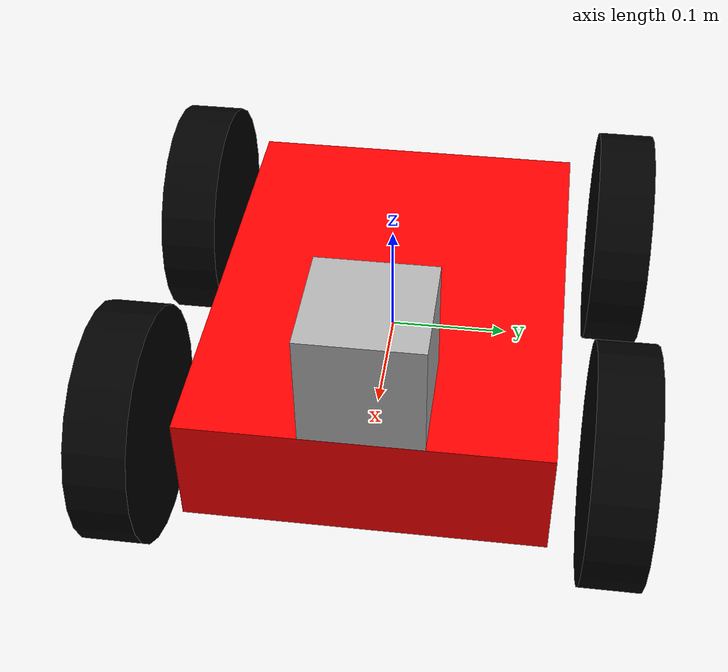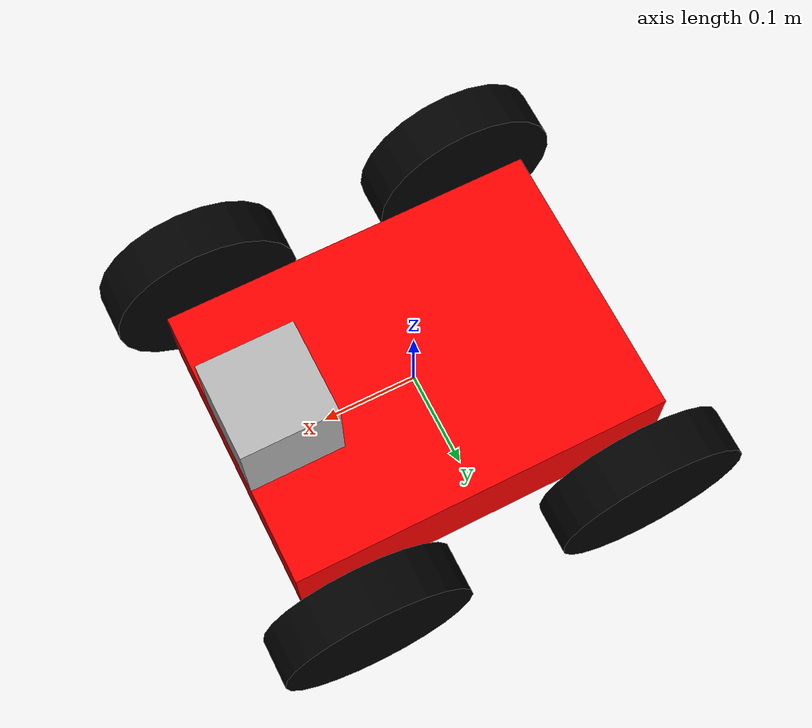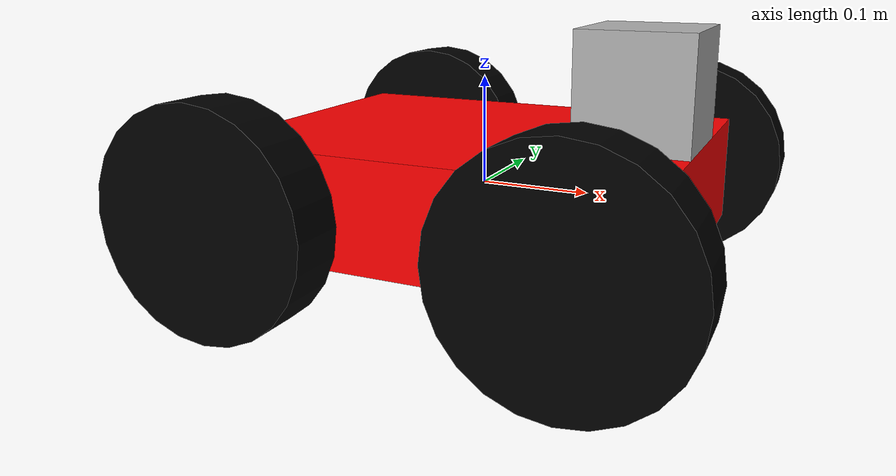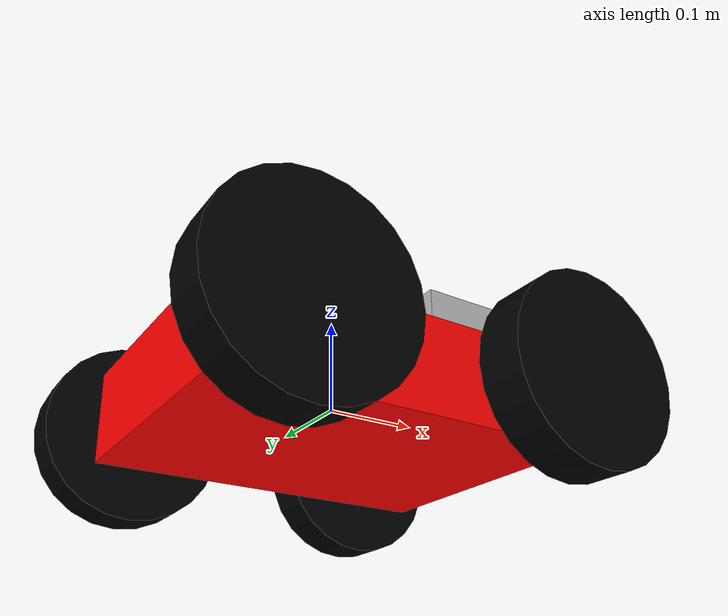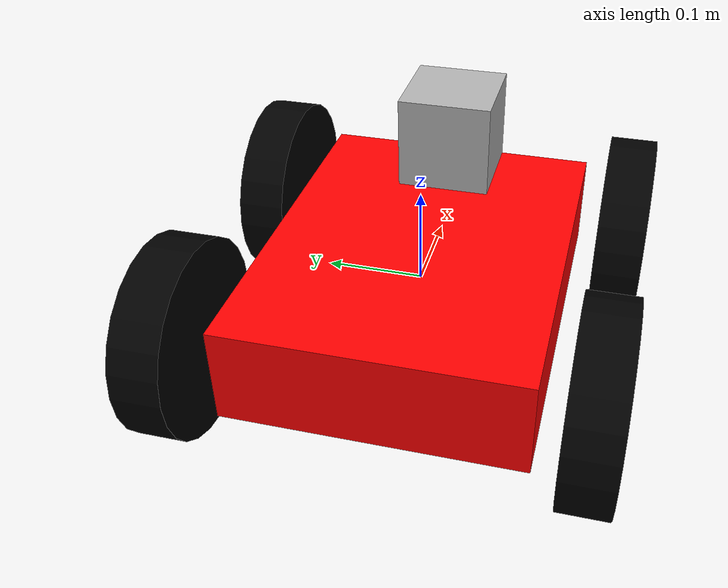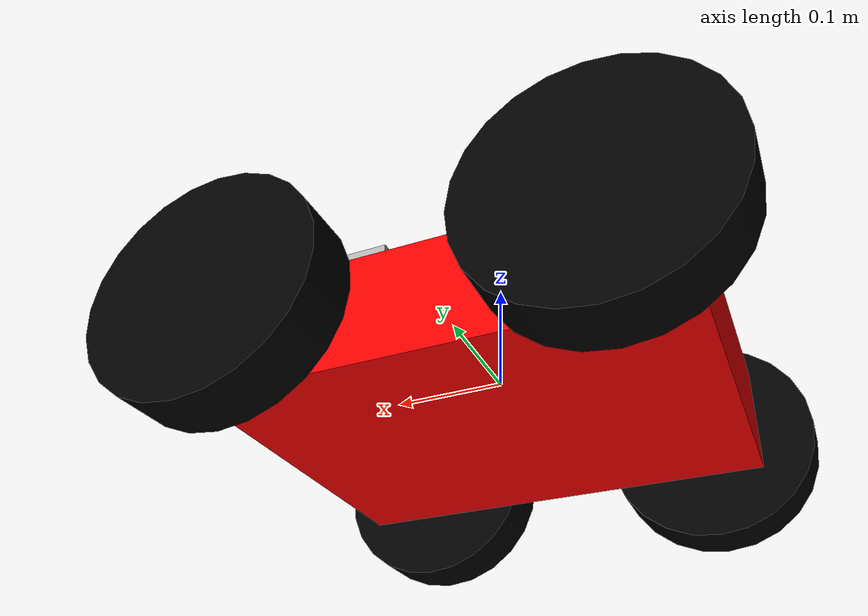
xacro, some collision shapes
<robot name="sardor" xmlns:xacro="http://www.ros.org/wiki/xacro">

  <!-- import URDF files -->
  <xacro:include filename="$(find sardor)/urdf/sardor.gazebo" />
  <xacro:include filename="$(find sardor)/urdf/properties.xacro"/>
  <!-- robot_footprint -->
  <link name="robot_footprint"></link>

  <joint name="robot_footprint_joint" type="fixed">
    <origin xyz="0 0 0" rpy="0 0 0" />
    <parent link="robot_footprint"/>
    <child link="chassis" />
  </joint>

  <!-- chassis -->
  <link name='chassis'>
    <pose>0 0 0.1 0 0 0</pose>

    <visual name='chassis_visual'>
      <origin xyz="0 0 0" rpy=" 0 0 0"/>
      <geometry>
        <box size=".4 .3 .1"/>
      </geometry>
      <material name="red"/>
    </visual>

    <inertial>
      <mass value="15.0"/>
      <origin xyz="0.0 0 0" rpy=" 0 0 0"/>
      <inertia
          ixx="0.1" ixy="0" ixz="0"
          iyy="0.1" iyz="0"
          izz="0.1"
      />
    </inertial>

    <collision name='collision'>
      <origin xyz="0 0 0" rpy=" 0 0 0"/>
      <geometry>
        <box size=".4 .3 .1"/>
      </geometry>
    </collision>

  </link>
<!-- left_down_wheel -->

  <link name="left_down_wheel">

    <visual name='left_down_wheel_visual'>
      <origin xyz="0 0 0" rpy=" 0 1.5707 1.5707"/>
      <geometry>
        <cylinder radius="0.1" length="0.05"/>
      </geometry>
      <material name="black"/>
    </visual>

   <collision name='left_down_wheel_collision'>
      <origin xyz="0 0 0" rpy=" 0 1.5707 1.5707"/>
      <geometry>
        <cylinder radius="0.1" length="0.05"/>
      </geometry>
   </collision>

    <inertial>
      <mass value="5.0"/>
      <origin xyz="0.0 0 0" rpy=" 0 1.5707 1.5707"/>
      <inertia
          ixx="0.1" ixy="0" ixz="0"
          iyy="0.1" iyz="0"
          izz="0.1"
      />
    </inertial>

  </link>

  <joint type="continuous" name="left_down_wheel_hinge">
      <origin xyz="-0.15 0.2 0" rpy="0 0 0"/>
      <child link="left_down_wheel"/>
      <parent link="chassis"/>
      <axis xyz="0 1 0" rpy="0 0 0"/>
      <limit effort="10000" velocity="1000"/>
      <joint_properties damping="1.0" friction="1.0"/>
  </joint>

  <!-- right_down_wheel -->

  <link name="right_down_wheel">

    <visual name='right_down_wheel_visual'>
      <origin xyz="0 0 0" rpy=" 0 1.5707 1.5707"/>
      <geometry>
        <cylinder radius="0.1" length="0.05"/>
      </geometry>
      <material name="black"/>
    </visual>

    <collision name='right_down_wheel_collision'>
      <origin xyz="0 0 0" rpy=" 0 1.5707 1.5707"/>
      <geometry>
        <cylinder radius="0.1" length="0.05"/>
      </geometry>
    </collision>

    <inertial>
      <mass value="5.0"/>
      <origin xyz="0.0 0 0" rpy=" 0 1.5707 1.5707"/>
      <inertia
          ixx="0.1" ixy="0" ixz="0"
          iyy="0.1" iyz="0"
          izz="0.1"
      />
    </inertial>

  </link>

  <joint type="continuous" name="right_down_wheel_hinge">
      <origin xyz="-0.15 -0.2 0" rpy="0 0 0"/>
      <child link="right_down_wheel"/>
      <parent link="chassis"/>
      <axis xyz="0 1 0" rpy="0 0 0"/>
      <limit effort="10000" velocity="1000"/>
      <joint_properties damping="1.0" friction="1.0"/>
  </joint>
  <!-- right_up_wheel -->

  <link name="right_up_wheel">

    <visual name='right_up_wheel_visual'>
      <origin xyz="0 0 0" rpy=" 0 1.5707 1.5707"/>
      <geometry>
        <cylinder radius="0.1" length="0.05"/>
      </geometry>
      <material name="black"/>
    </visual>

    <collision name='right_up_wheel_collision'>
      <origin xyz="0 0 0" rpy=" 0 1.5707 1.5707"/>
      <geometry>
        <cylinder radius="0.1" length="0.05"/>
      </geometry>
    </collision>

    <inertial>
      <mass value="5.0"/>
      <origin xyz="0.0 0 0" rpy=" 0 1.5707 1.5707"/>
      <inertia
          ixx="0.1" ixy="0" ixz="0"
          iyy="0.1" iyz="0"
          izz="0.1"
      />
    </inertial>

  </link>

  <joint type="continuous" name="right_up_wheel_hinge">
      <origin xyz="0.15 -0.2 0" rpy="0 0 0"/>
      <child link="right_up_wheel"/>
      <parent link="chassis"/>
      <axis xyz="0 1 0" rpy="0 0 0"/>
      <limit effort="10000" velocity="1000"/>
      <joint_properties damping="1.0" friction="1.0"/>
  </joint>
<!-- left_up_wheel -->

  <link name="left_up_wheel">

    <visual name='left_up_wheel_visual'>
      <origin xyz="0 0 0" rpy=" 0 1.5707 1.5707"/>
      <geometry>
        <cylinder radius="0.1" length="0.05"/>
      </geometry>
      <material name="black"/>
    </visual>

   <collision name='left_up_wheel_collision'>
      <origin xyz="0 0 0" rpy=" 0 1.5707 1.5707"/>
      <geometry>
        <cylinder radius="0.1" length="0.05"/>
      </geometry>
   </collision>

    <inertial>
      <mass value="5.0"/>
      <origin xyz="0.0 0 0" rpy=" 0 1.5707 1.5707"/>
      <inertia
          ixx="0.1" ixy="0" ixz="0"
          iyy="0.1" iyz="0"
          izz="0.1"
      />
    </inertial>

  </link>

  <joint type="continuous" name="left_up_wheel_hinge">
      <origin xyz="0.15 0.2 0" rpy="0 0 0"/>
      <child link="left_up_wheel"/>
      <parent link="chassis"/>
      <axis xyz="0 1 0" rpy="0 0 0"/>
      <limit effort="10000" velocity="1000"/>
      <joint_properties damping="1.0" friction="1.0"/>
  </joint>
<!-- camera -->

  <link name="camera">

   <collision name='camera_collision'>
      <origin xyz="0 0 0" rpy=" 0 0 0"/>
      <geometry>
        <box size="0.05 0.05 0.05"/>
      </geometry>
    </collision>

    <inertial>
      <mass value="0.1"/>
      <origin xyz="0 0 0" rpy=" 0 0 0"/>
      <inertia
          ixx="1e-6" ixy="0" ixz="0"
          iyy="1e-6" iyz="0"
          izz="1e-6"
      />
    </inertial>

    <visual name='camera_visual'>
      <origin xyz="0 0 0" rpy=" 0 0 0"/>
      <geometry>
        <box size="0.05 0.05 0.05"/>
      </geometry>
    </visual>

  </link>

  <joint type="fixed" name="camera_joint">
      <origin xyz="0.15 0 0" rpy="0 0 0"/>
      <child link="camera"/>
      <parent link="chassis"/>
      <axis xyz="1 0 0" rpy="0 0 0"/>
  </joint>

<!-- hokuyo laser range finder -->

  <link name="hokuyo">
    <collision name='hokuyo_collision'>
      <origin xyz="0 0 0" rpy=" 0 0 0"/>
      <geometry>
        <box size="0.1 0.1 0.1"/>
      </geometry>
    </collision>

    <inertial>
      <mass value="0.1"/>
      <origin xyz="0 0 0" rpy=" 0 0 0"/>
      <inertia
          ixx="1e-6" ixy="0" ixz="0"
          iyy="1e-6" iyz="0"
          izz="1e-6"
      />
    </inertial>

    <visual name='hokuyo_visual'>
      <origin xyz="0 0 0" rpy=" 0 0 0"/>
      <geometry>
        <mesh filename="package://udacity_bot/meshes/hokuyo.dae"/>
      </geometry>
    </visual>
  </link>

  <joint type="fixed" name="hokuyo_joint">
      <origin xyz="0.15 0 0.1" rpy="0 0 0"/>
      <child link="hokuyo"/>
      <parent link="chassis"/>
      <axis xyz="1 0 0" rpy="0 0 0"/>
  </joint>

</robot>

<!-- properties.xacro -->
<robot name="sardor" xmlns:xacro="http://www.ros.org/wiki/xacro">
  <material name="white">
	<color rgba="1.0 1.0 1.0 1.0"/>
	</material>
  <material name="black">
      <color rgba="0.0 0.0 0.0 1.0"/>
  </material>

  <material name="blue">
    <color rgba="0.0 0.0 1.0 1.0"/>
  </material>

  <material name="green">
    <color rgba="0.0 1.0 0.0 1.0"/>
  </material>

  <material name="red">
    <color rgba="1.0 0.0 0.0 1.0"/>
  </material>

</robot>
